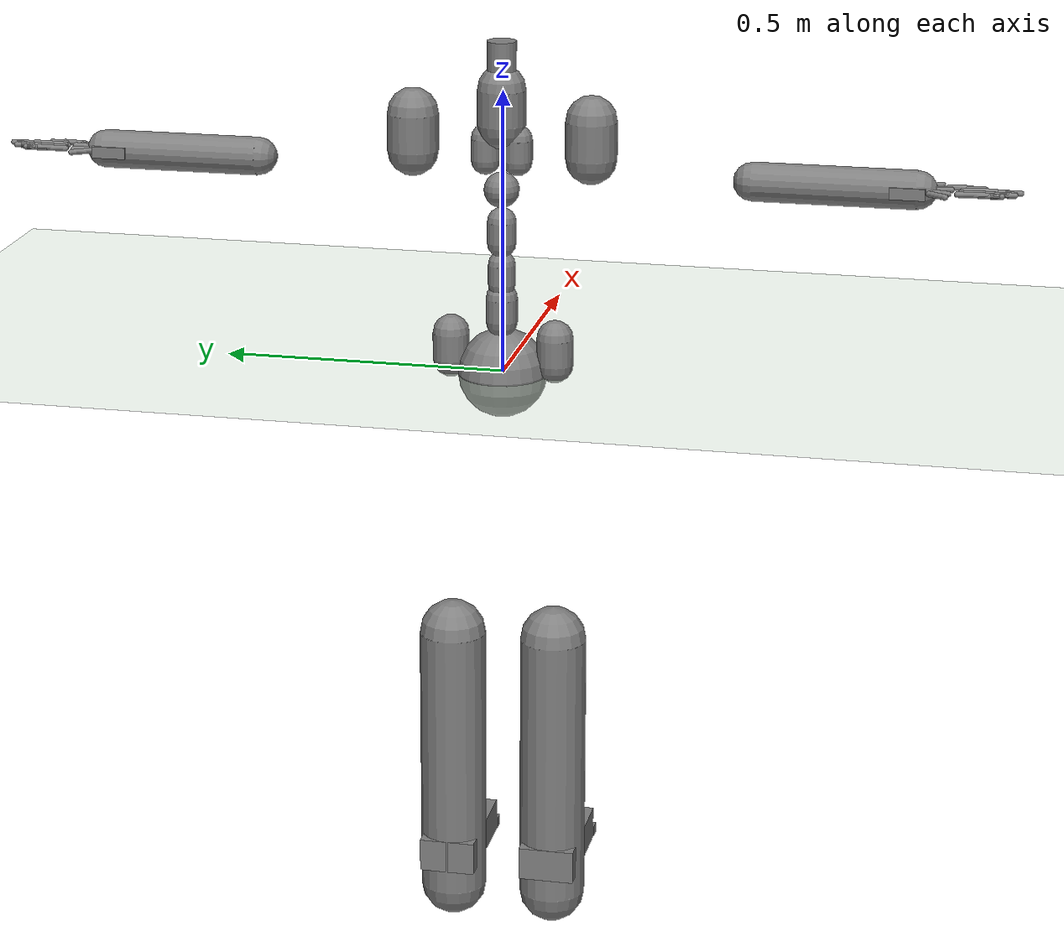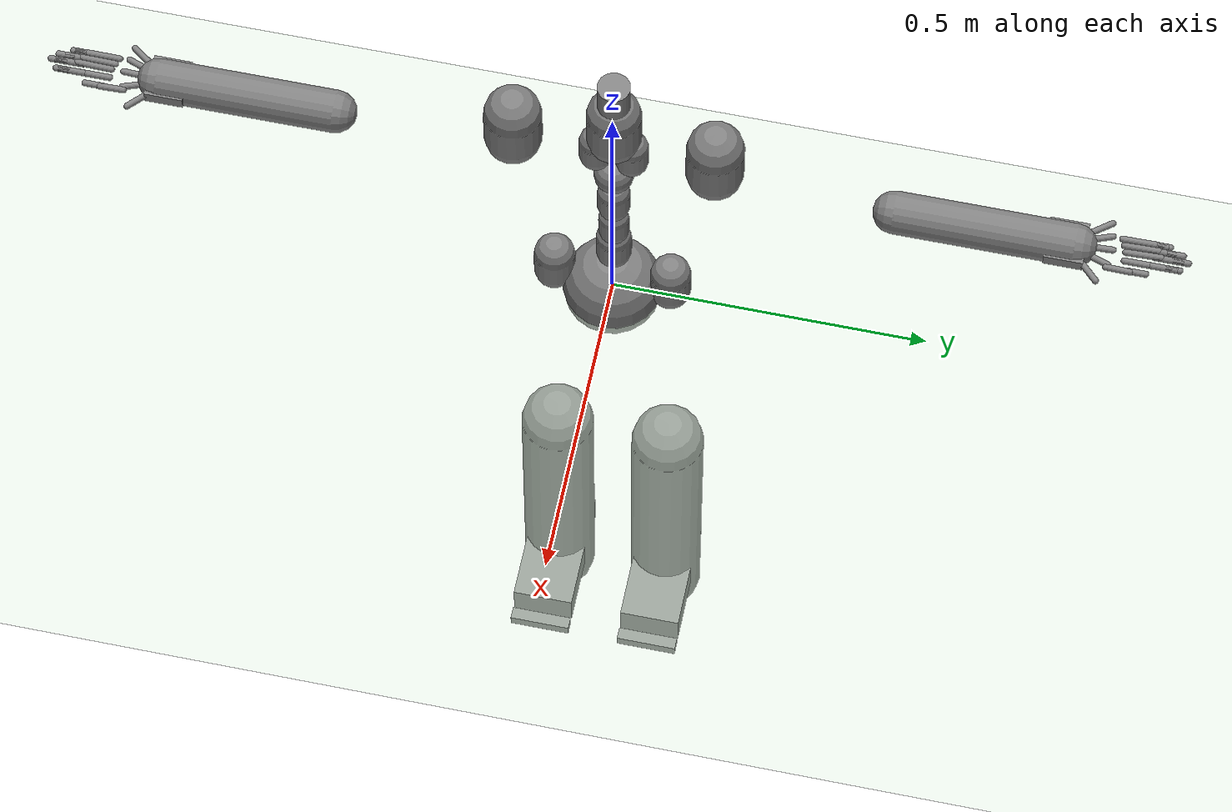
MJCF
<?xml version="1.0" ?>
<mujoco model="humanoid">
  <compiler coordinate="local"/>
  <statistic extent="2" center="0 0 1"/>
  <option timestep="0.00555"/>
  <default>
    <motor ctrlrange="-1 1" ctrllimited="true"/>
    <geom type="capsule" condim="1" friction="1.0 0.05 0.05" solimp=".9 .99 .003" solref=".015 1"/>
    <joint type="hinge" damping="0.1" stiffness="5" armature=".007" limited="true" solimplimit="0 .99 .01"/>
    <site size=".04" group="3"/>
  </default>
  <asset>
    <texture type="skybox" builtin="gradient" rgb1=".4 .5 .6" rgb2="0 0 0" width="100" height="100"/>
    <texture builtin="flat" height="1278" mark="cross" markrgb="1 1 1" name="texgeom" random="0.01" rgb1="0.8 0.6 0.4" rgb2="0.8 0.6 0.4" type="cube" width="127"/>
    <texture builtin="checker" height="100" name="texplane" rgb1="0 0 0" rgb2="0.8 0.8 0.8" type="2d" width="100"/>
    <material name="MatPlane" reflectance="0.5" shininess="1" specular="1" texrepeat="60 60" texture="texplane"/>
    <material name="geom" texture="texgeom" texuniform="true"/>
  </asset>
  <worldbody>
    <light cutoff="100" diffuse="1 1 1" dir="-0 0 -1.3" directional="true" exponent="1" pos="0 0 1.3" specular=".1 .1 .1"/>
    <geom conaffinity="1" condim="3" name="floor" pos="0 0 0" rgba="0.8 0.9 0.8 1" size="100 100 .2" type="plane" material="MatPlane"/>
    <body name="pHipOrigin" pos="0 0 0">
      <freejoint name="pHipOrigin"/>
      <geom type="sphere" contype="1" conaffinity="1" density="4629.6296296296305" size="0.07841" pos="0.0000 0.0000 -0.0000"/>
      <body name="jL5S1" pos="-0.00883614 0 0.07952507">
        <geom type="capsule" contype="1" conaffinity="1" density="1000" fromto="0 0 0.01600 0 0 0.05601" size="0.02801"/>
        <joint name="jL5S1_x" type="hinge" pos="0 0 0" axis="1 0 0" stiffness="500" damping="500" armature="0.02" range="-180.0000 180.0000"/>
        <joint name="jL5S1_y" type="hinge" pos="0 0 0" axis="0 1 0" stiffness="500" damping="500" armature="0.02" range="-180.0000 180.0000"/>
        <joint name="jL5S1_z" type="hinge" pos="0 0 0" axis="0 0 1" stiffness="500" damping="500" armature="0.02" range="-180.0000 180.0000"/>
        <body name="jL4L3" pos="0 0 0.06854896">
          <geom type="capsule" contype="1" conaffinity="1" density="1000" fromto="0 0 0.01371 0 0 0.04798" size="0.02399"/>
          <joint name="jL4L3_x" type="hinge" pos="0 0 0" axis="1 0 0" stiffness="500" damping="500" armature="0.02" range="-180.0000 180.0000"/>
          <joint name="jL4L3_y" type="hinge" pos="0 0 0" axis="0 1 0" stiffness="500" damping="500" armature="0.02" range="-180.0000 180.0000"/>
          <joint name="jL4L3_z" type="hinge" pos="0 0 0" axis="0 0 1" stiffness="500" damping="500" armature="0.02" range="-180.0000 180.0000"/>
          <body name="jL1T12" pos="-0.00056384 0 0.07308333">
            <geom type="capsule" contype="1" conaffinity="1" density="1000" fromto="0 0 0.01462 0 0 0.05116" size="0.02558"/>
            <joint name="jL1T12_x" type="hinge" pos="0 0 0" axis="1 0 0" stiffness="500" damping="500" armature="0.02" range="-180.0000 180.0000"/>
            <joint name="jL1T12_y" type="hinge" pos="0 0 0" axis="0 1 0" stiffness="500" damping="500" armature="0.02" range="-180.0000 180.0000"/>
            <joint name="jL1T12_z" type="hinge" pos="0 0 0" axis="0 0 1" stiffness="500" damping="500" armature="0.02" range="-180.0000 180.0000"/>
            <body name="jT9T8" pos="-0.00059683 0 0.07720903">
              <geom type="sphere" contype="1" conaffinity="1" density="1000" size="0.03088" pos="0.000 0.0000 0.030885"/>
              <joint name="jT9T8_x" type="hinge" pos="0 0 0" axis="1 0 0" stiffness="500" damping="500" armature="0.02" range="-180.0000 180.0000"/>
              <joint name="jT9T8_y" type="hinge" pos="0 0 0" axis="0 1 0" stiffness="500" damping="500" armature="0.02" range="-180.0000 180.0000"/>
              <joint name="jT9T8_z" type="hinge" pos="0 0 0" axis="0 0 1" stiffness="500" damping="500" armature="0.02" range="-180.0000 180.0000"/>
              <body name="jT1C7" pos="0 0 0.12055299">
                <geom type="capsule" contype="1" conaffinity="1" density="1000" fromto="0 0 0.02411 0 0 0.08439" size="0.04219"/>
                <joint name="jT1C7_x" type="hinge" pos="0 0 0" axis="1 0 0" stiffness="500" damping="500" armature="0.02" range="-180.0000 180.0000"/>
                <joint name="jT1C7_y" type="hinge" pos="0 0 0" axis="0 1 0" stiffness="500" damping="500" armature="0.02" range="-180.0000 180.0000"/>
                <joint name="jT1C7_z" type="hinge" pos="0 0 0" axis="0 0 1" stiffness="500" damping="500" armature="0.02" range="-180.0000 180.0000"/>
                <body name="jC1Head" pos="0.00098894 0 0.08382499">
                  <geom type="cylinder" contype="1" conaffinity="1" density="1000" fromto="0 0 0 0 0 0.08383" size="0.02515"/>
                  <joint name="jC1Head_x" type="hinge" pos="0 0 0" axis="1 0 0" stiffness="500" damping="500" armature="0.02" range="-180.0000 180.0000"/>
                  <joint name="jC1Head_y" type="hinge" pos="0 0 0" axis="0 1 0" stiffness="500" damping="500" armature="0.02" range="-180.0000 180.0000"/>
                  <joint name="jC1Head_z" type="hinge" pos="0 0 0" axis="0 0 1" stiffness="500" damping="500" armature="0.02" range="-180.0000 180.0000"/>
                </body>
              </body>
              <body name="jRightT4Shoulder" pos="0 -0.02789141 0.06800539">
                <geom type="capsule" contype="1" conaffinity="1" density="1000" fromto="0 0 0.01470 0 0 0.05145" size="0.02573"/>
                <joint name="jRightT4Shoulder_x" type="hinge" pos="0 0 0" axis="1 0 0" stiffness="500" damping="500" armature="0.02" range="-180.0000 180.0000"/>
                <joint name="jRightT4Shoulder_y" type="hinge" pos="0 0 0" axis="0 1 0" stiffness="500" damping="500" armature="0.02" range="-180.0000 180.0000"/>
                <joint name="jRightT4Shoulder_z" type="hinge" pos="0 0 0" axis="0 0 1" stiffness="500" damping="500" armature="0.02" range="-180.0000 180.0000"/>
                <body name="jRightShoulder" pos="0 -0.12751989 0">
                  <geom type="capsule" contype="1" conaffinity="1" density="1000" fromto="0 0 0.02550 0 0 0.08926" size="0.04463"/>
                  <joint name="jRightShoulder_x" type="hinge" pos="0 0 0" axis="1 0 0" stiffness="500" damping="500" armature="0.02" range="-180.0000 180.0000"/>
                  <joint name="jRightShoulder_y" type="hinge" pos="0 0 0" axis="0 1 0" stiffness="500" damping="500" armature="0.02" range="-180.0000 180.0000"/>
                  <joint name="jRightShoulder_z" type="hinge" pos="0 0 0" axis="0 0 1" stiffness="500" damping="500" armature="0.02" range="-180.0000 180.0000"/>
                  <body name="jRightElbow" pos="0 -0.27647701 0">
                    <geom type="capsule" contype="1" conaffinity="1" density="1000" fromto="0 0 0 0.00000000 -0.27647701 0.00000000" size="0.03318"/>
                    <joint name="jRightElbow_x" type="hinge" pos="0 0 0" axis="1 0 0" stiffness="500" damping="500" armature="0.02" range="-180.0000 180.0000"/>
                    <joint name="jRightElbow_y" type="hinge" pos="0 0 0" axis="0 1 0" stiffness="500" damping="500" armature="0.02" range="-180.0000 180.0000"/>
                    <joint name="jRightElbow_z" type="hinge" pos="0 0 0" axis="0 0 1" stiffness="500" damping="500" armature="0.02" range="-180.0000 180.0000"/>
                    <body name="jRightWrist" pos="0.00010528 -0.26157853 0">
                      <geom density="1000" type="box" pos="0 0 0" size="0.035 0.03 0.01" quat="1.0000 0.0000 0.0000 0.0000"/>
                      <joint name="jRightWrist_x" type="hinge" pos="0 0 0" axis="1 0 0" stiffness="500" damping="500" armature="0.02" range="-180.0000 180.0000"/>
                      <joint name="jRightWrist_y" type="hinge" pos="0 0 0" axis="0 1 0" stiffness="500" damping="500" armature="0.02" range="-180.0000 180.0000"/>
                      <joint name="jRightWrist_z" type="hinge" pos="0 0 0" axis="0 0 1" stiffness="500" damping="500" armature="0.02" range="-180.0000 180.0000"/>
                      <body name="jRightFirstCMC" pos="0.02715768 -0.02603216 -0.00122987">
                        <geom type="capsule" contype="1" conaffinity="1" density="1000" fromto="0 0 0 0.02715768 -0.02603216 -0.00122987" size="0.005"/>
                        <joint name="jRightFirstCMC_x" type="hinge" pos="0 0 0" axis="1 0 0" stiffness="500" damping="500" armature="0.02" range="-180.0000 180.0000"/>
                        <joint name="jRightFirstCMC_y" type="hinge" pos="0 0 0" axis="0 1 0" stiffness="500" damping="500" armature="0.02" range="-180.0000 180.0000"/>
                        <joint name="jRightFirstCMC_z" type="hinge" pos="0 0 0" axis="0 0 1" stiffness="500" damping="500" armature="0.02" range="-180.0000 180.0000"/>
                        <body name="jRightFirstMCP" pos="0.00133478 -0.03766648 0.00079589">
                          <geom type="capsule" contype="1" conaffinity="1" density="1000" fromto="0 0 0 0.00133478 -0.03766648 0.00079589" size="0.005"/>
                          <joint name="jRightFirstMCP_x" type="hinge" pos="0 0 0" axis="1 0 0" stiffness="500" damping="500" armature="0.02" range="-180.0000 180.0000"/>
                          <joint name="jRightFirstMCP_y" type="hinge" pos="0 0 0" axis="0 1 0" stiffness="500" damping="500" armature="0.02" range="-180.0000 180.0000"/>
                          <joint name="jRightFirstMCP_z" type="hinge" pos="0 0 0" axis="0 0 1" stiffness="500" damping="500" armature="0.02" range="-180.0000 180.0000"/>
                          <body name="jRightIP" pos="0 -0.03042756 0">
                            <geom type="capsule" contype="1" conaffinity="1" density="1000" fromto="0 0 0 0.00000000 -0.03042756 0.00000000" size="0.005"/>
                            <joint name="jRightIP_x" type="hinge" pos="0 0 0" axis="1 0 0" stiffness="500" damping="500" armature="0.02" range="-180.0000 180.0000"/>
                            <joint name="jRightIP_y" type="hinge" pos="0 0 0" axis="0 1 0" stiffness="500" damping="500" armature="0.02" range="-180.0000 180.0000"/>
                            <joint name="jRightIP_z" type="hinge" pos="0 0 0" axis="0 0 1" stiffness="500" damping="500" armature="0.02" range="-180.0000 180.0000"/>
                          </body>
                        </body>
                      </body>
                      <body name="jRightSecondCMC" pos="0.01153263 -0.03369471 -0.00058772">
                        <geom type="capsule" contype="1" conaffinity="1" density="1000" fromto="0 0 0 0.01153263 -0.03369471 -0.00058772" size="0.005"/>
                        <joint name="jRightSecondCMC_x" type="hinge" pos="0 0 0" axis="1 0 0" stiffness="500" damping="500" armature="0.02" range="-180.0000 180.0000"/>
                        <joint name="jRightSecondCMC_y" type="hinge" pos="0 0 0" axis="0 1 0" stiffness="500" damping="500" armature="0.02" range="-180.0000 180.0000"/>
                        <joint name="jRightSecondCMC_z" type="hinge" pos="0 0 0" axis="0 0 1" stiffness="500" damping="500" armature="0.02" range="-180.0000 180.0000"/>
                        <body name="jRightSecondMCP" pos="-0.00035126 -0.05602282 -0.00058114">
                          <geom type="capsule" contype="1" conaffinity="1" density="1000" fromto="0 0 0 -0.00035126 -0.05602282 -0.00058114" size="0.005"/>
                          <joint name="jRightSecondMCP_x" type="hinge" pos="0 0 0" axis="1 0 0" stiffness="500" damping="500" armature="0.02" range="-180.0000 180.0000"/>
                          <joint name="jRightSecondMCP_y" type="hinge" pos="0 0 0" axis="0 1 0" stiffness="500" damping="500" armature="0.02" range="-180.0000 180.0000"/>
                          <joint name="jRightSecondMCP_z" type="hinge" pos="0 0 0" axis="0 0 1" stiffness="500" damping="500" armature="0.02" range="-180.0000 180.0000"/>
                          <body name="jRightSecondPIP" pos="0 -0.04053439 0">
                            <geom type="capsule" contype="1" conaffinity="1" density="1000" fromto="0 0 0 0.00000000 -0.04053439 0.00000000" size="0.005"/>
                            <joint name="jRightSecondPIP_x" type="hinge" pos="0 0 0" axis="1 0 0" stiffness="500" damping="500" armature="0.02" range="-180.0000 180.0000"/>
                            <joint name="jRightSecondPIP_y" type="hinge" pos="0 0 0" axis="0 1 0" stiffness="500" damping="500" armature="0.02" range="-180.0000 180.0000"/>
                            <joint name="jRightSecondPIP_z" type="hinge" pos="0 0 0" axis="0 0 1" stiffness="500" damping="500" armature="0.02" range="-180.0000 180.0000"/>
                            <body name="jRightSecondDIP" pos="0 -0.02212784 0">
                              <geom type="capsule" contype="1" conaffinity="1" density="1000" fromto="0 0 0 0.00000000 -0.02212784 0.00000000" size="0.005"/>
                              <joint name="jRightSecondDIP_x" type="hinge" pos="0 0 0" axis="1 0 0" stiffness="500" damping="500" armature="0.02" range="-180.0000 180.0000"/>
                              <joint name="jRightSecondDIP_y" type="hinge" pos="0 0 0" axis="0 1 0" stiffness="500" damping="500" armature="0.02" range="-180.0000 180.0000"/>
                              <joint name="jRightSecondDIP_z" type="hinge" pos="0 0 0" axis="0 0 1" stiffness="500" damping="500" armature="0.02" range="-180.0000 180.0000"/>
                            </body>
                          </body>
                        </body>
                      </body>
                      <body name="jRightThirdCMC" pos="-0.00065376 -0.03535376 0.00148633">
                        <geom type="capsule" contype="1" conaffinity="1" density="1000" fromto="0 0 0 -0.00065376 -0.03535376 0.00148633" size="0.005"/>
                        <joint name="jRightThirdCMC_x" type="hinge" pos="0 0 0" axis="1 0 0" stiffness="500" damping="500" armature="0.02" range="-180.0000 180.0000"/>
                        <joint name="jRightThirdCMC_y" type="hinge" pos="0 0 0" axis="0 1 0" stiffness="500" damping="500" armature="0.02" range="-180.0000 180.0000"/>
                        <joint name="jRightThirdCMC_z" type="hinge" pos="0 0 0" axis="0 0 1" stiffness="500" damping="500" armature="0.02" range="-180.0000 180.0000"/>
                        <body name="jRightThirdMCP" pos="-0.00065576 -0.05432976 0.00147810">
                          <geom type="capsule" contype="1" conaffinity="1" density="1000" fromto="0 0 0 -0.00065576 -0.05432976 0.00147810" size="0.005"/>
                          <joint name="jRightThirdMCP_x" type="hinge" pos="0 0 0" axis="1 0 0" stiffness="500" damping="500" armature="0.02" range="-180.0000 180.0000"/>
                          <joint name="jRightThirdMCP_y" type="hinge" pos="0 0 0" axis="0 1 0" stiffness="500" damping="500" armature="0.02" range="-180.0000 180.0000"/>
                          <joint name="jRightThirdMCP_z" type="hinge" pos="0 0 0" axis="0 0 1" stiffness="500" damping="500" armature="0.02" range="-180.0000 180.0000"/>
                          <body name="jRightThirdPIP" pos="0 -0.04418756 0">
                            <geom type="capsule" contype="1" conaffinity="1" density="1000" fromto="0 0 0 0.00000000 -0.04418756 0.00000000" size="0.005"/>
                            <joint name="jRightThirdPIP_x" type="hinge" pos="0 0 0" axis="1 0 0" stiffness="500" damping="500" armature="0.02" range="-180.0000 180.0000"/>
                            <joint name="jRightThirdPIP_y" type="hinge" pos="0 0 0" axis="0 1 0" stiffness="500" damping="500" armature="0.02" range="-180.0000 180.0000"/>
                            <joint name="jRightThirdPIP_z" type="hinge" pos="0 0 0" axis="0 0 1" stiffness="500" damping="500" armature="0.02" range="-180.0000 180.0000"/>
                            <body name="jRightThirdDIP" pos="0 -0.02562359 0">
                              <geom type="capsule" contype="1" conaffinity="1" density="1000" fromto="0 0 0 0.00000000 -0.02562359 0.00000000" size="0.005"/>
                              <joint name="jRightThirdDIP_x" type="hinge" pos="0 0 0" axis="1 0 0" stiffness="500" damping="500" armature="0.02" range="-180.0000 180.0000"/>
                              <joint name="jRightThirdDIP_y" type="hinge" pos="0 0 0" axis="0 1 0" stiffness="500" damping="500" armature="0.02" range="-180.0000 180.0000"/>
                              <joint name="jRightThirdDIP_z" type="hinge" pos="0 0 0" axis="0 0 1" stiffness="500" damping="500" armature="0.02" range="-180.0000 180.0000"/>
                            </body>
                          </body>
                        </body>
                      </body>
                      <body name="jRightFourthCMC" pos="-0.01205511 -0.03357548 0.00079031">
                        <geom type="capsule" contype="1" conaffinity="1" density="1000" fromto="0 0 0 -0.01205511 -0.03357548 0.00079031" size="0.005"/>
                        <joint name="jRightFourthCMC_x" type="hinge" pos="0 0 0" axis="1 0 0" stiffness="500" damping="500" armature="0.02" range="-180.0000 180.0000"/>
                        <joint name="jRightFourthCMC_y" type="hinge" pos="0 0 0" axis="0 1 0" stiffness="500" damping="500" armature="0.02" range="-180.0000 180.0000"/>
                        <joint name="jRightFourthCMC_z" type="hinge" pos="0 0 0" axis="0 0 1" stiffness="500" damping="500" armature="0.02" range="-180.0000 180.0000"/>
                        <body name="jRightFourthMCP" pos="-0.00038499 -0.05276725 0.00082902">
                          <geom type="capsule" contype="1" conaffinity="1" density="1000" fromto="0 0 0 -0.00038499 -0.05276725 0.00082902" size="0.005"/>
                          <joint name="jRightFourthMCP_x" type="hinge" pos="0 0 0" axis="1 0 0" stiffness="500" damping="500" armature="0.02" range="-180.0000 180.0000"/>
                          <joint name="jRightFourthMCP_y" type="hinge" pos="0 0 0" axis="0 1 0" stiffness="500" damping="500" armature="0.02" range="-180.0000 180.0000"/>
                          <joint name="jRightFourthMCP_z" type="hinge" pos="0 0 0" axis="0 0 1" stiffness="500" damping="500" armature="0.02" range="-180.0000 180.0000"/>
                          <body name="jRightFourthPIP" pos="0 -0.03969449 0">
                            <geom type="capsule" contype="1" conaffinity="1" density="1000" fromto="0 0 0 0.00000000 -0.03969449 0.00000000" size="0.005"/>
                            <joint name="jRightFourthPIP_x" type="hinge" pos="0 0 0" axis="1 0 0" stiffness="500" damping="500" armature="0.02" range="-180.0000 180.0000"/>
                            <joint name="jRightFourthPIP_y" type="hinge" pos="0 0 0" axis="0 1 0" stiffness="500" damping="500" armature="0.02" range="-180.0000 180.0000"/>
                            <joint name="jRightFourthPIP_z" type="hinge" pos="0 0 0" axis="0 0 1" stiffness="500" damping="500" armature="0.02" range="-180.0000 180.0000"/>
                            <body name="jRightFourthDIP" pos="0 -0.02489287 0">
                              <geom type="capsule" contype="1" conaffinity="1" density="1000" fromto="0 0 0 0.00000000 -0.02489287 0.00000000" size="0.005"/>
                              <joint name="jRightFourthDIP_x" type="hinge" pos="0 0 0" axis="1 0 0" stiffness="500" damping="500" armature="0.02" range="-180.0000 180.0000"/>
                              <joint name="jRightFourthDIP_y" type="hinge" pos="0 0 0" axis="0 1 0" stiffness="500" damping="500" armature="0.02" range="-180.0000 180.0000"/>
                              <joint name="jRightFourthDIP_z" type="hinge" pos="0 0 0" axis="0 0 1" stiffness="500" damping="500" armature="0.02" range="-180.0000 180.0000"/>
                            </body>
                          </body>
                        </body>
                      </body>
                      <body name="jRightFifthCMC" pos="-0.02292596 -0.03194471 0.00063017">
                        <geom type="capsule" contype="1" conaffinity="1" density="1000" fromto="0 0 0 -0.02292596 -0.03194471 0.00063017" size="0.005"/>
                        <joint name="jRightFifthCMC_x" type="hinge" pos="0 0 0" axis="1 0 0" stiffness="500" damping="500" armature="0.02" range="-180.0000 180.0000"/>
                        <joint name="jRightFifthCMC_y" type="hinge" pos="0 0 0" axis="0 1 0" stiffness="500" damping="500" armature="0.02" range="-180.0000 180.0000"/>
                        <joint name="jRightFifthCMC_z" type="hinge" pos="0 0 0" axis="0 0 1" stiffness="500" damping="500" armature="0.02" range="-180.0000 180.0000"/>
                        <body name="jRightFifthMCP" pos="-0.00000740 -0.05009052 0.00068931">
                          <geom type="capsule" contype="1" conaffinity="1" density="1000" fromto="0 0 0 -0.00000740 -0.05009052 0.00068931" size="0.005"/>
                          <joint name="jRightFifthMCP_x" type="hinge" pos="0 0 0" axis="1 0 0" stiffness="500" damping="500" armature="0.02" range="-180.0000 180.0000"/>
                          <joint name="jRightFifthMCP_y" type="hinge" pos="0 0 0" axis="0 1 0" stiffness="500" damping="500" armature="0.02" range="-180.0000 180.0000"/>
                          <joint name="jRightFifthMCP_z" type="hinge" pos="0 0 0" axis="0 0 1" stiffness="500" damping="500" armature="0.02" range="-180.0000 180.0000"/>
                          <body name="jRightFifthPIP" pos="0 -0.03507616 0">
                            <geom type="capsule" contype="1" conaffinity="1" density="1000" fromto="0 0 0 0.00000000 -0.03507616 0.00000000" size="0.005"/>
                            <joint name="jRightFifthPIP_x" type="hinge" pos="0 0 0" axis="1 0 0" stiffness="500" damping="500" armature="0.02" range="-180.0000 180.0000"/>
                            <joint name="jRightFifthPIP_y" type="hinge" pos="0 0 0" axis="0 1 0" stiffness="500" damping="500" armature="0.02" range="-180.0000 180.0000"/>
                            <joint name="jRightFifthPIP_z" type="hinge" pos="0 0 0" axis="0 0 1" stiffness="500" damping="500" armature="0.02" range="-180.0000 180.0000"/>
                            <body name="jRightFifthDIP" pos="0 -0.01909505 0">
                              <geom type="capsule" contype="1" conaffinity="1" density="1000" fromto="0 0 0 0.00000000 -0.01909505 0.00000000" size="0.005"/>
                              <joint name="jRightFifthDIP_x" type="hinge" pos="0 0 0" axis="1 0 0" stiffness="500" damping="500" armature="0.02" range="-180.0000 180.0000"/>
                              <joint name="jRightFifthDIP_y" type="hinge" pos="0 0 0" axis="0 1 0" stiffness="500" damping="500" armature="0.02" range="-180.0000 180.0000"/>
                              <joint name="jRightFifthDIP_z" type="hinge" pos="0 0 0" axis="0 0 1" stiffness="500" damping="500" armature="0.02" range="-180.0000 180.0000"/>
                            </body>
                          </body>
                        </body>
                      </body>
                    </body>
                  </body>
                </body>
              </body>
              <body name="jLeftT4Shoulder" pos="0 0.02781060 0.06780835">
                <geom type="capsule" contype="1" conaffinity="1" density="1000" fromto="0 0 0.01466 0 0 0.05130" size="0.02565"/>
                <joint name="jLeftT4Shoulder_x" type="hinge" pos="0 0 0" axis="1 0 0" stiffness="500" damping="500" armature="0.02" range="-180.0000 180.0000"/>
                <joint name="jLeftT4Shoulder_y" type="hinge" pos="0 0 0" axis="0 1 0" stiffness="500" damping="500" armature="0.02" range="-180.0000 180.0000"/>
                <joint name="jLeftT4Shoulder_z" type="hinge" pos="0 0 0" axis="0 0 1" stiffness="500" damping="500" armature="0.02" range="-180.0000 180.0000"/>
                <body name="jLeftShoulder" pos="0 0.12753560 0">
                  <geom type="capsule" contype="1" conaffinity="1" density="1000" fromto="0 0 0.02551 0 0 0.08927" size="0.04464"/>
                  <joint name="jLeftShoulder_x" type="hinge" pos="0 0 0" axis="1 0 0" stiffness="500" damping="500" armature="0.02" range="-180.0000 180.0000"/>
                  <joint name="jLeftShoulder_y" type="hinge" pos="0 0 0" axis="0 1 0" stiffness="500" damping="500" armature="0.02" range="-180.0000 180.0000"/>
                  <joint name="jLeftShoulder_z" type="hinge" pos="0 0 0" axis="0 0 1" stiffness="500" damping="500" armature="0.02" range="-180.0000 180.0000"/>
                  <body name="jLeftElbow" pos="0 0.27616096 0">
                    <geom type="capsule" contype="1" conaffinity="1" density="1000" fromto="0 0 0 0.00000000 0.27616096 0.00000000" size="0.03314"/>
                    <joint name="jLeftElbow_x" type="hinge" pos="0 0 0" axis="1 0 0" stiffness="500" damping="500" armature="0.02" range="-180.0000 180.0000"/>
                    <joint name="jLeftElbow_y" type="hinge" pos="0 0 0" axis="0 1 0" stiffness="500" damping="500" armature="0.02" range="-180.0000 180.0000"/>
                    <joint name="jLeftElbow_z" type="hinge" pos="0 0 0" axis="0 0 1" stiffness="500" damping="500" armature="0.02" range="-180.0000 180.0000"/>
                    <body name="jLeftWrist" pos="0.00010555 0.26225198 0">
                      <geom density="1000" type="box" pos="0 0 0" size="0.035 0.03 0.01" quat="1.0000 0.0000 0.0000 0.0000"/>
                      <joint name="jLeftWrist_x" type="hinge" pos="0 0 0" axis="1 0 0" stiffness="500" damping="500" armature="0.02" range="-180.0000 180.0000"/>
                      <joint name="jLeftWrist_y" type="hinge" pos="0 0 0" axis="0 1 0" stiffness="500" damping="500" armature="0.02" range="-180.0000 180.0000"/>
                      <joint name="jLeftWrist_z" type="hinge" pos="0 0 0" axis="0 0 1" stiffness="500" damping="500" armature="0.02" range="-180.0000 180.0000"/>
                      <body name="jLeftFirstCMC" pos="0.02658097 0.02664375 -0.00118968">
                        <geom type="capsule" contype="1" conaffinity="1" density="1000" fromto="0 0 0 0.02658097 0.02664375 -0.00118968" size="0.005"/>
                        <joint name="jLeftFirstCMC_x" type="hinge" pos="0 0 0" axis="1 0 0" stiffness="500" damping="500" armature="0.02" range="-180.0000 180.0000"/>
                        <joint name="jLeftFirstCMC_y" type="hinge" pos="0 0 0" axis="0 1 0" stiffness="500" damping="500" armature="0.02" range="-180.0000 180.0000"/>
                        <joint name="jLeftFirstCMC_z" type="hinge" pos="0 0 0" axis="0 0 1" stiffness="500" damping="500" armature="0.02" range="-180.0000 180.0000"/>
                        <body name="jLeftFirstMCP" pos="0.00132192 0.03766563 0.00077563">
                          <geom type="capsule" contype="1" conaffinity="1" density="1000" fromto="0 0 0 0.00132192 0.03766563 0.00077563" size="0.005"/>
                          <joint name="jLeftFirstMCP_x" type="hinge" pos="0 0 0" axis="1 0 0" stiffness="500" damping="500" armature="0.02" range="-180.0000 180.0000"/>
                          <joint name="jLeftFirstMCP_y" type="hinge" pos="0 0 0" axis="0 1 0" stiffness="500" damping="500" armature="0.02" range="-180.0000 180.0000"/>
                          <joint name="jLeftFirstMCP_z" type="hinge" pos="0 0 0" axis="0 0 1" stiffness="500" damping="500" armature="0.02" range="-180.0000 180.0000"/>
                          <body name="jLeftIP" pos="0 0.03042756 0">
                            <geom type="capsule" contype="1" conaffinity="1" density="1000" fromto="0 0 0 0.00000000 0.03042756 0.00000000" size="0.005"/>
                            <joint name="jLeftIP_x" type="hinge" pos="0 0 0" axis="1 0 0" stiffness="500" damping="500" armature="0.02" range="-180.0000 180.0000"/>
                            <joint name="jLeftIP_y" type="hinge" pos="0 0 0" axis="0 1 0" stiffness="500" damping="500" armature="0.02" range="-180.0000 180.0000"/>
                            <joint name="jLeftIP_z" type="hinge" pos="0 0 0" axis="0 0 1" stiffness="500" damping="500" armature="0.02" range="-180.0000 180.0000"/>
                          </body>
                        </body>
                      </body>
                      <body name="jLeftSecondCMC" pos="0.01166547 0.03363271 -0.00059257">
                        <geom type="capsule" contype="1" conaffinity="1" density="1000" fromto="0 0 0 0.01166547 0.03363271 -0.00059257" size="0.005"/>
                        <joint name="jLeftSecondCMC_x" type="hinge" pos="0 0 0" axis="1 0 0" stiffness="500" damping="500" armature="0.02" range="-180.0000 180.0000"/>
                        <joint name="jLeftSecondCMC_y" type="hinge" pos="0 0 0" axis="0 1 0" stiffness="500" damping="500" armature="0.02" range="-180.0000 180.0000"/>
                        <joint name="jLeftSecondCMC_z" type="hinge" pos="0 0 0" axis="0 0 1" stiffness="500" damping="500" armature="0.02" range="-180.0000 180.0000"/>
                        <body name="jLeftSecondMCP" pos="-0.00030627 0.05602397 -0.00058832">
                          <geom type="capsule" contype="1" conaffinity="1" density="1000" fromto="0 0 0 -0.00030627 0.05602397 -0.00058832" size="0.005"/>
                          <joint name="jLeftSecondMCP_x" type="hinge" pos="0 0 0" axis="1 0 0" stiffness="500" damping="500" armature="0.02" range="-180.0000 180.0000"/>
                          <joint name="jLeftSecondMCP_y" type="hinge" pos="0 0 0" axis="0 1 0" stiffness="500" damping="500" armature="0.02" range="-180.0000 180.0000"/>
                          <joint name="jLeftSecondMCP_z" type="hinge" pos="0 0 0" axis="0 0 1" stiffness="500" damping="500" armature="0.02" range="-180.0000 180.0000"/>
                          <body name="jLeftSecondPIP" pos="0 0.04053439 0">
                            <geom type="capsule" contype="1" conaffinity="1" density="1000" fromto="0 0 0 0.00000000 0.04053439 0.00000000" size="0.005"/>
                            <joint name="jLeftSecondPIP_x" type="hinge" pos="0 0 0" axis="1 0 0" stiffness="500" damping="500" armature="0.02" range="-180.0000 180.0000"/>
                            <joint name="jLeftSecondPIP_y" type="hinge" pos="0 0 0" axis="0 1 0" stiffness="500" damping="500" armature="0.02" range="-180.0000 180.0000"/>
                            <joint name="jLeftSecondPIP_z" type="hinge" pos="0 0 0" axis="0 0 1" stiffness="500" damping="500" armature="0.02" range="-180.0000 180.0000"/>
                            <body name="jLeftSecondDIP" pos="0 0.02212784 0">
                              <geom type="capsule" contype="1" conaffinity="1" density="1000" fromto="0 0 0 0.00000000 0.02212784 0.00000000" size="0.005"/>
                              <joint name="jLeftSecondDIP_x" type="hinge" pos="0 0 0" axis="1 0 0" stiffness="500" damping="500" armature="0.02" range="-180.0000 180.0000"/>
                              <joint name="jLeftSecondDIP_y" type="hinge" pos="0 0 0" axis="0 1 0" stiffness="500" damping="500" armature="0.02" range="-180.0000 180.0000"/>
                              <joint name="jLeftSecondDIP_z" type="hinge" pos="0 0 0" axis="0 0 1" stiffness="500" damping="500" armature="0.02" range="-180.0000 180.0000"/>
                            </body>
                          </body>
                        </body>
                      </body>
                      <body name="jLeftThirdCMC" pos="-0.00065760 0.03535694 0.00143678">
                        <geom type="capsule" contype="1" conaffinity="1" density="1000" fromto="0 0 0 -0.00065760 0.03535694 0.00143678" size="0.005"/>
                        <joint name="jLeftThirdCMC_x" type="hinge" pos="0 0 0" axis="1 0 0" stiffness="500" damping="500" armature="0.02" range="-180.0000 180.0000"/>
                        <joint name="jLeftThirdCMC_y" type="hinge" pos="0 0 0" axis="0 1 0" stiffness="500" damping="500" armature="0.02" range="-180.0000 180.0000"/>
                        <joint name="jLeftThirdCMC_z" type="hinge" pos="0 0 0" axis="0 0 1" stiffness="500" damping="500" armature="0.02" range="-180.0000 180.0000"/>
                        <body name="jLeftThirdMCP" pos="-0.00066105 0.05433081 0.00144839">
                          <geom type="capsule" contype="1" conaffinity="1" density="1000" fromto="0 0 0 -0.00066105 0.05433081 0.00144839" size="0.005"/>
                          <joint name="jLeftThirdMCP_x" type="hinge" pos="0 0 0" axis="1 0 0" stiffness="500" damping="500" armature="0.02" range="-180.0000 180.0000"/>
                          <joint name="jLeftThirdMCP_y" type="hinge" pos="0 0 0" axis="0 1 0" stiffness="500" damping="500" armature="0.02" range="-180.0000 180.0000"/>
                          <joint name="jLeftThirdMCP_z" type="hinge" pos="0 0 0" axis="0 0 1" stiffness="500" damping="500" armature="0.02" range="-180.0000 180.0000"/>
                          <body name="jLeftThirdPIP" pos="0 0.04418756 0">
                            <geom type="capsule" contype="1" conaffinity="1" density="1000" fromto="0 0 0 0.00000000 0.04418756 0.00000000" size="0.005"/>
                            <joint name="jLeftThirdPIP_x" type="hinge" pos="0 0 0" axis="1 0 0" stiffness="500" damping="500" armature="0.02" range="-180.0000 180.0000"/>
                            <joint name="jLeftThirdPIP_y" type="hinge" pos="0 0 0" axis="0 1 0" stiffness="500" damping="500" armature="0.02" range="-180.0000 180.0000"/>
                            <joint name="jLeftThirdPIP_z" type="hinge" pos="0 0 0" axis="0 0 1" stiffness="500" damping="500" armature="0.02" range="-180.0000 180.0000"/>
                            <body name="jLeftThirdDIP" pos="0 0.02562359 0">
                              <geom type="capsule" contype="1" conaffinity="1" density="1000" fromto="0 0 0 0.00000000 0.02562359 0.00000000" size="0.005"/>
                              <joint name="jLeftThirdDIP_x" type="hinge" pos="0 0 0" axis="1 0 0" stiffness="500" damping="500" armature="0.02" range="-180.0000 180.0000"/>
                              <joint name="jLeftThirdDIP_y" type="hinge" pos="0 0 0" axis="0 1 0" stiffness="500" damping="500" armature="0.02" range="-180.0000 180.0000"/>
                              <joint name="jLeftThirdDIP_z" type="hinge" pos="0 0 0" axis="0 0 1" stiffness="500" damping="500" armature="0.02" range="-180.0000 180.0000"/>
                            </body>
                          </body>
                        </body>
                      </body>
                      <body name="jLeftFourthCMC" pos="-0.01249745 0.03340374 0.00084365">
                        <geom type="capsule" contype="1" conaffinity="1" density="1000" fromto="0 0 0 -0.01249745 0.03340374 0.00084365" size="0.005"/>
                        <joint name="jLeftFourthCMC_x" type="hinge" pos="0 0 0" axis="1 0 0" stiffness="500" damping="500" armature="0.02" range="-180.0000 180.0000"/>
                        <joint name="jLeftFourthCMC_y" type="hinge" pos="0 0 0" axis="0 1 0" stiffness="500" damping="500" armature="0.02" range="-180.0000 180.0000"/>
                        <joint name="jLeftFourthCMC_z" type="hinge" pos="0 0 0" axis="0 0 1" stiffness="500" damping="500" armature="0.02" range="-180.0000 180.0000"/>
                        <body name="jLeftFourthMCP" pos="-0.00041403 0.05276423 0.00087678">
                          <geom type="capsule" contype="1" conaffinity="1" density="1000" fromto="0 0 0 -0.00041403 0.05276423 0.00087678" size="0.005"/>
                          <joint name="jLeftFourthMCP_x" type="hinge" pos="0 0 0" axis="1 0 0" stiffness="500" damping="500" armature="0.02" range="-180.0000 180.0000"/>
                          <joint name="jLeftFourthMCP_y" type="hinge" pos="0 0 0" axis="0 1 0" stiffness="500" damping="500" armature="0.02" range="-180.0000 180.0000"/>
                          <joint name="jLeftFourthMCP_z" type="hinge" pos="0 0 0" axis="0 0 1" stiffness="500" damping="500" armature="0.02" range="-180.0000 180.0000"/>
                          <body name="jLeftFourthPIP" pos="0 0.03969449 0">
                            <geom type="capsule" contype="1" conaffinity="1" density="1000" fromto="0 0 0 0.00000000 0.03969449 0.00000000" size="0.005"/>
                            <joint name="jLeftFourthPIP_x" type="hinge" pos="0 0 0" axis="1 0 0" stiffness="500" damping="500" armature="0.02" range="-180.0000 180.0000"/>
                            <joint name="jLeftFourthPIP_y" type="hinge" pos="0 0 0" axis="0 1 0" stiffness="500" damping="500" armature="0.02" range="-180.0000 180.0000"/>
                            <joint name="jLeftFourthPIP_z" type="hinge" pos="0 0 0" axis="0 0 1" stiffness="500" damping="500" armature="0.02" range="-180.0000 180.0000"/>
                            <body name="jLeftFourthDIP" pos="0 0.02489287 0">
                              <geom type="capsule" contype="1" conaffinity="1" density="1000" fromto="0 0 0 0.00000000 0.02489287 0.00000000" size="0.005"/>
                              <joint name="jLeftFourthDIP_x" type="hinge" pos="0 0 0" axis="1 0 0" stiffness="500" damping="500" armature="0.02" range="-180.0000 180.0000"/>
                              <joint name="jLeftFourthDIP_y" type="hinge" pos="0 0 0" axis="0 1 0" stiffness="500" damping="500" armature="0.02" range="-180.0000 180.0000"/>
                              <joint name="jLeftFourthDIP_z" type="hinge" pos="0 0 0" axis="0 0 1" stiffness="500" damping="500" armature="0.02" range="-180.0000 180.0000"/>
                            </body>
                          </body>
                        </body>
                      </body>
                      <body name="jLeftFifthCMC" pos="-0.02362047 0.03143969 0.00064030">
                        <geom type="capsule" contype="1" conaffinity="1" density="1000" fromto="0 0 0 -0.02362047 0.03143969 0.00064030" size="0.005"/>
                        <joint name="jLeftFifthCMC_x" type="hinge" pos="0 0 0" axis="1 0 0" stiffness="500" damping="500" armature="0.02" range="-180.0000 180.0000"/>
                        <joint name="jLeftFifthCMC_y" type="hinge" pos="0 0 0" axis="0 1 0" stiffness="500" damping="500" armature="0.02" range="-180.0000 180.0000"/>
                        <joint name="jLeftFifthCMC_z" type="hinge" pos="0 0 0" axis="0 0 1" stiffness="500" damping="500" armature="0.02" range="-180.0000 180.0000"/>
                        <body name="jLeftFifthMCP" pos="-0.00001421 0.05008915 0.00072075">
                          <geom type="capsule" contype="1" conaffinity="1" density="1000" fromto="0 0 0 -0.00001421 0.05008915 0.00072075" size="0.005"/>
                          <joint name="jLeftFifthMCP_x" type="hinge" pos="0 0 0" axis="1 0 0" stiffness="500" damping="500" armature="0.02" range="-180.0000 180.0000"/>
                          <joint name="jLeftFifthMCP_y" type="hinge" pos="0 0 0" axis="0 1 0" stiffness="500" damping="500" armature="0.02" range="-180.0000 180.0000"/>
                          <joint name="jLeftFifthMCP_z" type="hinge" pos="0 0 0" axis="0 0 1" stiffness="500" damping="500" armature="0.02" range="-180.0000 180.0000"/>
                          <body name="jLeftFifthPIP" pos="0 0.03507616 0">
                            <geom type="capsule" contype="1" conaffinity="1" density="1000" fromto="0 0 0 0.00000000 0.03507616 0.00000000" size="0.005"/>
                            <joint name="jLeftFifthPIP_x" type="hinge" pos="0 0 0" axis="1 0 0" stiffness="500" damping="500" armature="0.02" range="-180.0000 180.0000"/>
                            <joint name="jLeftFifthPIP_y" type="hinge" pos="0 0 0" axis="0 1 0" stiffness="500" damping="500" armature="0.02" range="-180.0000 180.0000"/>
                            <joint name="jLeftFifthPIP_z" type="hinge" pos="0 0 0" axis="0 0 1" stiffness="500" damping="500" armature="0.02" range="-180.0000 180.0000"/>
                            <body name="jLeftFifthDIP" pos="0 0.01909505 0">
                              <geom type="capsule" contype="1" conaffinity="1" density="1000" fromto="0 0 0 0.00000000 0.01909505 0.00000000" size="0.005"/>
                              <joint name="jLeftFifthDIP_x" type="hinge" pos="0 0 0" axis="1 0 0" stiffness="500" damping="500" armature="0.02" range="-180.0000 180.0000"/>
                              <joint name="jLeftFifthDIP_y" type="hinge" pos="0 0 0" axis="0 1 0" stiffness="500" damping="500" armature="0.02" range="-180.0000 180.0000"/>
                              <joint name="jLeftFifthDIP_z" type="hinge" pos="0 0 0" axis="0 0 1" stiffness="500" damping="500" armature="0.02" range="-180.0000 180.0000"/>
                            </body>
                          </body>
                        </body>
                      </body>
                    </body>
                  </body>
                </body>
              </body>
            </body>
          </body>
        </body>
      </body>
      <body name="jRightHip" pos="-0.00015618 -0.09268363 0.00140598">
        <geom type="capsule" contype="1" conaffinity="1" density="1000" fromto="0 0 0.01854 0 0 0.06489" size="0.03244"/>
        <joint name="jRightHip_x" type="hinge" pos="0 0 0" axis="1 0 0" stiffness="500" damping="500" armature="0.02" range="-180.0000 180.0000"/>
        <joint name="jRightHip_y" type="hinge" pos="0 0 0" axis="0 1 0" stiffness="500" damping="500" armature="0.02" range="-180.0000 180.0000"/>
        <joint name="jRightHip_z" type="hinge" pos="0 0 0" axis="0 0 1" stiffness="500" damping="500" armature="0.02" range="-180.0000 180.0000"/>
        <body name="jRightKnee" pos="0.00005922 0 -0.49669978">
          <geom type="capsule" contype="1" conaffinity="1" density="1000" fromto="0 0 0 0.00005922 0.00000000 -0.49669978" size="0.05960"/>
          <joint name="jRightKnee_x" type="hinge" pos="0 0 0" axis="1 0 0" stiffness="500" damping="500" armature="0.02" range="-180.0000 180.0000"/>
          <joint name="jRightKnee_y" type="hinge" pos="0 0 0" axis="0 1 0" stiffness="500" damping="500" armature="0.02" range="-180.0000 180.0000"/>
          <joint name="jRightKnee_z" type="hinge" pos="0 0 0" axis="0 0 1" stiffness="500" damping="500" armature="0.02" range="-180.0000 180.0000"/>
          <body name="jRightAnkle" pos="0.00044394 0 -0.39316282">
            <geom density="1000" type="box" pos="0.04 0. -0.03" size="0.1 0.05 0.03" quat="1.0 0 0 0"/>
            <joint name="jRightAnkle_x" type="hinge" pos="0 0 0" axis="1 0 0" stiffness="500" damping="500" armature="0.02" range="-180.0000 180.0000"/>
            <joint name="jRightAnkle_y" type="hinge" pos="0 0 0" axis="0 1 0" stiffness="500" damping="500" armature="0.02" range="-180.0000 180.0000"/>
            <joint name="jRightAnkle_z" type="hinge" pos="0 0 0" axis="0 0 1" stiffness="500" damping="500" armature="0.02" range="-180.0000 180.0000"/>
            <body name="jRightBallFoot" pos="0.15818763 0 -0.07257032">
              <geom density="1000" type="box" pos="0 0 0.02" size="0.01 0.05 0.01" quat="1.0 0 0 0"/>
              <joint name="jRightBallFoot_x" type="hinge" pos="0 0 0" axis="1 0 0" stiffness="500" damping="500" armature="0.02" range="-180.0000 180.0000"/>
              <joint name="jRightBallFoot_y" type="hinge" pos="0 0 0" axis="0 1 0" stiffness="500" damping="500" armature="0.02" range="-180.0000 180.0000"/>
              <joint name="jRightBallFoot_z" type="hinge" pos="0 0 0" axis="0 0 1" stiffness="500" damping="500" armature="0.02" range="-180.0000 180.0000"/>
            </body>
          </body>
        </body>
      </body>
      <body name="jLeftHip" pos="-0.00015379 0.09245966 0.00138403">
        <geom type="capsule" contype="1" conaffinity="1" density="1000" fromto="0 0 0.01849 0 0 0.06473" size="0.03236"/>
        <joint name="jLeftHip_x" type="hinge" pos="0 0 0" axis="1 0 0" stiffness="500" damping="500" armature="0.02" range="-180.0000 180.0000"/>
        <joint name="jLeftHip_y" type="hinge" pos="0 0 0" axis="0 1 0" stiffness="500" damping="500" armature="0.02" range="-180.0000 180.0000"/>
        <joint name="jLeftHip_z" type="hinge" pos="0 0 0" axis="0 0 1" stiffness="500" damping="500" armature="0.02" range="-180.0000 180.0000"/>
        <body name="jLeftKnee" pos="0.00005941 0 -0.49830314">
          <geom type="capsule" contype="1" conaffinity="1" density="1000" fromto="0 0 0 0.00005941 0.00000000 -0.49830314" size="0.05980"/>
          <joint name="jLeftKnee_x" type="hinge" pos="0 0 0" axis="1 0 0" stiffness="500" damping="500" armature="0.02" range="-180.0000 180.0000"/>
          <joint name="jLeftKnee_y" type="hinge" pos="0 0 0" axis="0 1 0" stiffness="500" damping="500" armature="0.02" range="-180.0000 180.0000"/>
          <joint name="jLeftKnee_z" type="hinge" pos="0 0 0" axis="0 0 1" stiffness="500" damping="500" armature="0.02" range="-180.0000 180.0000"/>
          <body name="jLeftAnkle" pos="0.00044394 0 -0.39316285">
            <geom density="1000" type="box" pos="0.04 0. -0.03" size="0.1 0.05 0.03" quat="1.0 0 0 0"/>
            <joint name="jLeftAnkle_x" type="hinge" pos="0 0 0" axis="1 0 0" stiffness="500" damping="500" armature="0.02" range="-180.0000 180.0000"/>
            <joint name="jLeftAnkle_y" type="hinge" pos="0 0 0" axis="0 1 0" stiffness="500" damping="500" armature="0.02" range="-180.0000 180.0000"/>
            <joint name="jLeftAnkle_z" type="hinge" pos="0 0 0" axis="0 0 1" stiffness="500" damping="500" armature="0.02" range="-180.0000 180.0000"/>
            <body name="jLeftBallFoot" pos="0.15818765 0 -0.07257033">
              <geom density="1000" type="box" pos="0 0 0.02" size="0.01 0.05 0.01" quat="1.0 0 0 0"/>
              <joint name="jLeftBallFoot_x" type="hinge" pos="0 0 0" axis="1 0 0" stiffness="500" damping="500" armature="0.02" range="-180.0000 180.0000"/>
              <joint name="jLeftBallFoot_y" type="hinge" pos="0 0 0" axis="0 1 0" stiffness="500" damping="500" armature="0.02" range="-180.0000 180.0000"/>
              <joint name="jLeftBallFoot_z" type="hinge" pos="0 0 0" axis="0 0 1" stiffness="500" damping="500" armature="0.02" range="-180.0000 180.0000"/>
            </body>
          </body>
        </body>
      </body>
    </body>
  </worldbody>
  <actuator>
    <motor name="jL5S1_x" joint="jL5S1_x" gear="500"/>
    <motor name="jL5S1_y" joint="jL5S1_y" gear="500"/>
    <motor name="jL5S1_z" joint="jL5S1_z" gear="500"/>
    <motor name="jL4L3_x" joint="jL4L3_x" gear="500"/>
    <motor name="jL4L3_y" joint="jL4L3_y" gear="500"/>
    <motor name="jL4L3_z" joint="jL4L3_z" gear="500"/>
    <motor name="jL1T12_x" joint="jL1T12_x" gear="500"/>
    <motor name="jL1T12_y" joint="jL1T12_y" gear="500"/>
    <motor name="jL1T12_z" joint="jL1T12_z" gear="500"/>
    <motor name="jT9T8_x" joint="jT9T8_x" gear="500"/>
    <motor name="jT9T8_y" joint="jT9T8_y" gear="500"/>
    <motor name="jT9T8_z" joint="jT9T8_z" gear="500"/>
    <motor name="jT1C7_x" joint="jT1C7_x" gear="500"/>
    <motor name="jT1C7_y" joint="jT1C7_y" gear="500"/>
    <motor name="jT1C7_z" joint="jT1C7_z" gear="500"/>
    <motor name="jC1Head_x" joint="jC1Head_x" gear="500"/>
    <motor name="jC1Head_y" joint="jC1Head_y" gear="500"/>
    <motor name="jC1Head_z" joint="jC1Head_z" gear="500"/>
    <motor name="jRightT4Shoulder_x" joint="jRightT4Shoulder_x" gear="500"/>
    <motor name="jRightT4Shoulder_y" joint="jRightT4Shoulder_y" gear="500"/>
    <motor name="jRightT4Shoulder_z" joint="jRightT4Shoulder_z" gear="500"/>
    <motor name="jRightShoulder_x" joint="jRightShoulder_x" gear="500"/>
    <motor name="jRightShoulder_y" joint="jRightShoulder_y" gear="500"/>
    <motor name="jRightShoulder_z" joint="jRightShoulder_z" gear="500"/>
    <motor name="jRightElbow_x" joint="jRightElbow_x" gear="500"/>
    <motor name="jRightElbow_y" joint="jRightElbow_y" gear="500"/>
    <motor name="jRightElbow_z" joint="jRightElbow_z" gear="500"/>
    <motor name="jRightWrist_x" joint="jRightWrist_x" gear="500"/>
    <motor name="jRightWrist_y" joint="jRightWrist_y" gear="500"/>
    <motor name="jRightWrist_z" joint="jRightWrist_z" gear="500"/>
    <motor name="jLeftT4Shoulder_x" joint="jLeftT4Shoulder_x" gear="500"/>
    <motor name="jLeftT4Shoulder_y" joint="jLeftT4Shoulder_y" gear="500"/>
    <motor name="jLeftT4Shoulder_z" joint="jLeftT4Shoulder_z" gear="500"/>
    <motor name="jLeftShoulder_x" joint="jLeftShoulder_x" gear="500"/>
    <motor name="jLeftShoulder_y" joint="jLeftShoulder_y" gear="500"/>
    <motor name="jLeftShoulder_z" joint="jLeftShoulder_z" gear="500"/>
    <motor name="jLeftElbow_x" joint="jLeftElbow_x" gear="500"/>
    <motor name="jLeftElbow_y" joint="jLeftElbow_y" gear="500"/>
    <motor name="jLeftElbow_z" joint="jLeftElbow_z" gear="500"/>
    <motor name="jLeftWrist_x" joint="jLeftWrist_x" gear="500"/>
    <motor name="jLeftWrist_y" joint="jLeftWrist_y" gear="500"/>
    <motor name="jLeftWrist_z" joint="jLeftWrist_z" gear="500"/>
    <motor name="jRightHip_x" joint="jRightHip_x" gear="500"/>
    <motor name="jRightHip_y" joint="jRightHip_y" gear="500"/>
    <motor name="jRightHip_z" joint="jRightHip_z" gear="500"/>
    <motor name="jRightKnee_x" joint="jRightKnee_x" gear="500"/>
    <motor name="jRightKnee_y" joint="jRightKnee_y" gear="500"/>
    <motor name="jRightKnee_z" joint="jRightKnee_z" gear="500"/>
    <motor name="jRightAnkle_x" joint="jRightAnkle_x" gear="500"/>
    <motor name="jRightAnkle_y" joint="jRightAnkle_y" gear="500"/>
    <motor name="jRightAnkle_z" joint="jRightAnkle_z" gear="500"/>
    <motor name="jRightBallFoot_x" joint="jRightBallFoot_x" gear="500"/>
    <motor name="jRightBallFoot_y" joint="jRightBallFoot_y" gear="500"/>
    <motor name="jRightBallFoot_z" joint="jRightBallFoot_z" gear="500"/>
    <motor name="jLeftHip_x" joint="jLeftHip_x" gear="500"/>
    <motor name="jLeftHip_y" joint="jLeftHip_y" gear="500"/>
    <motor name="jLeftHip_z" joint="jLeftHip_z" gear="500"/>
    <motor name="jLeftKnee_x" joint="jLeftKnee_x" gear="500"/>
    <motor name="jLeftKnee_y" joint="jLeftKnee_y" gear="500"/>
    <motor name="jLeftKnee_z" joint="jLeftKnee_z" gear="500"/>
    <motor name="jLeftAnkle_x" joint="jLeftAnkle_x" gear="500"/>
    <motor name="jLeftAnkle_y" joint="jLeftAnkle_y" gear="500"/>
    <motor name="jLeftAnkle_z" joint="jLeftAnkle_z" gear="500"/>
    <motor name="jLeftBallFoot_x" joint="jLeftBallFoot_x" gear="500"/>
    <motor name="jLeftBallFoot_y" joint="jLeftBallFoot_y" gear="500"/>
    <motor name="jLeftBallFoot_z" joint="jLeftBallFoot_z" gear="500"/>
    <motor name="jLeftFirstCMC_x" joint="jLeftFirstCMC_x" gear="500"/>
    <motor name="jLeftFirstCMC_y" joint="jLeftFirstCMC_y" gear="500"/>
    <motor name="jLeftFirstCMC_z" joint="jLeftFirstCMC_z" gear="500"/>
    <motor name="jLeftFirstMCP_x" joint="jLeftFirstMCP_x" gear="500"/>
    <motor name="jLeftFirstMCP_y" joint="jLeftFirstMCP_y" gear="500"/>
    <motor name="jLeftFirstMCP_z" joint="jLeftFirstMCP_z" gear="500"/>
    <motor name="jLeftIP_x" joint="jLeftIP_x" gear="500"/>
    <motor name="jLeftIP_y" joint="jLeftIP_y" gear="500"/>
    <motor name="jLeftIP_z" joint="jLeftIP_z" gear="500"/>
    <motor name="jLeftSecondCMC_x" joint="jLeftSecondCMC_x" gear="500"/>
    <motor name="jLeftSecondCMC_y" joint="jLeftSecondCMC_y" gear="500"/>
    <motor name="jLeftSecondCMC_z" joint="jLeftSecondCMC_z" gear="500"/>
    <motor name="jLeftSecondMCP_x" joint="jLeftSecondMCP_x" gear="500"/>
    <motor name="jLeftSecondMCP_y" joint="jLeftSecondMCP_y" gear="500"/>
    <motor name="jLeftSecondMCP_z" joint="jLeftSecondMCP_z" gear="500"/>
    <motor name="jLeftSecondPIP_x" joint="jLeftSecondPIP_x" gear="500"/>
    <motor name="jLeftSecondPIP_y" joint="jLeftSecondPIP_y" gear="500"/>
    <motor name="jLeftSecondPIP_z" joint="jLeftSecondPIP_z" gear="500"/>
    <motor name="jLeftSecondDIP_x" joint="jLeftSecondDIP_x" gear="500"/>
    <motor name="jLeftSecondDIP_y" joint="jLeftSecondDIP_y" gear="500"/>
    <motor name="jLeftSecondDIP_z" joint="jLeftSecondDIP_z" gear="500"/>
    <motor name="jLeftThirdCMC_x" joint="jLeftThirdCMC_x" gear="500"/>
    <motor name="jLeftThirdCMC_y" joint="jLeftThirdCMC_y" gear="500"/>
    <motor name="jLeftThirdCMC_z" joint="jLeftThirdCMC_z" gear="500"/>
    <motor name="jLeftThirdMCP_x" joint="jLeftThirdMCP_x" gear="500"/>
    <motor name="jLeftThirdMCP_y" joint="jLeftThirdMCP_y" gear="500"/>
    <motor name="jLeftThirdMCP_z" joint="jLeftThirdMCP_z" gear="500"/>
    <motor name="jLeftThirdPIP_x" joint="jLeftThirdPIP_x" gear="500"/>
    <motor name="jLeftThirdPIP_y" joint="jLeftThirdPIP_y" gear="500"/>
    <motor name="jLeftThirdPIP_z" joint="jLeftThirdPIP_z" gear="500"/>
    <motor name="jLeftThirdDIP_x" joint="jLeftThirdDIP_x" gear="500"/>
    <motor name="jLeftThirdDIP_y" joint="jLeftThirdDIP_y" gear="500"/>
    <motor name="jLeftThirdDIP_z" joint="jLeftThirdDIP_z" gear="500"/>
    <motor name="jLeftFourthCMC_x" joint="jLeftFourthCMC_x" gear="500"/>
    <motor name="jLeftFourthCMC_y" joint="jLeftFourthCMC_y" gear="500"/>
    <motor name="jLeftFourthCMC_z" joint="jLeftFourthCMC_z" gear="500"/>
    <motor name="jLeftFourthMCP_x" joint="jLeftFourthMCP_x" gear="500"/>
    <motor name="jLeftFourthMCP_y" joint="jLeftFourthMCP_y" gear="500"/>
    <motor name="jLeftFourthMCP_z" joint="jLeftFourthMCP_z" gear="500"/>
    <motor name="jLeftFourthPIP_x" joint="jLeftFourthPIP_x" gear="500"/>
    <motor name="jLeftFourthPIP_y" joint="jLeftFourthPIP_y" gear="500"/>
    <motor name="jLeftFourthPIP_z" joint="jLeftFourthPIP_z" gear="500"/>
    <motor name="jLeftFourthDIP_x" joint="jLeftFourthDIP_x" gear="500"/>
    <motor name="jLeftFourthDIP_y" joint="jLeftFourthDIP_y" gear="500"/>
    <motor name="jLeftFourthDIP_z" joint="jLeftFourthDIP_z" gear="500"/>
    <motor name="jLeftFifthCMC_x" joint="jLeftFifthCMC_x" gear="500"/>
    <motor name="jLeftFifthCMC_y" joint="jLeftFifthCMC_y" gear="500"/>
    <motor name="jLeftFifthCMC_z" joint="jLeftFifthCMC_z" gear="500"/>
    <motor name="jLeftFifthMCP_x" joint="jLeftFifthMCP_x" gear="500"/>
    <motor name="jLeftFifthMCP_y" joint="jLeftFifthMCP_y" gear="500"/>
    <motor name="jLeftFifthMCP_z" joint="jLeftFifthMCP_z" gear="500"/>
    <motor name="jLeftFifthPIP_x" joint="jLeftFifthPIP_x" gear="500"/>
    <motor name="jLeftFifthPIP_y" joint="jLeftFifthPIP_y" gear="500"/>
    <motor name="jLeftFifthPIP_z" joint="jLeftFifthPIP_z" gear="500"/>
    <motor name="jLeftFifthDIP_x" joint="jLeftFifthDIP_x" gear="500"/>
    <motor name="jLeftFifthDIP_y" joint="jLeftFifthDIP_y" gear="500"/>
    <motor name="jLeftFifthDIP_z" joint="jLeftFifthDIP_z" gear="500"/>
    <motor name="jRightFirstCMC_x" joint="jRightFirstCMC_x" gear="500"/>
    <motor name="jRightFirstCMC_y" joint="jRightFirstCMC_y" gear="500"/>
    <motor name="jRightFirstCMC_z" joint="jRightFirstCMC_z" gear="500"/>
    <motor name="jRightFirstMCP_x" joint="jRightFirstMCP_x" gear="500"/>
    <motor name="jRightFirstMCP_y" joint="jRightFirstMCP_y" gear="500"/>
    <motor name="jRightFirstMCP_z" joint="jRightFirstMCP_z" gear="500"/>
    <motor name="jRightIP_x" joint="jRightIP_x" gear="500"/>
    <motor name="jRightIP_y" joint="jRightIP_y" gear="500"/>
    <motor name="jRightIP_z" joint="jRightIP_z" gear="500"/>
    <motor name="jRightSecondCMC_x" joint="jRightSecondCMC_x" gear="500"/>
    <motor name="jRightSecondCMC_y" joint="jRightSecondCMC_y" gear="500"/>
    <motor name="jRightSecondCMC_z" joint="jRightSecondCMC_z" gear="500"/>
    <motor name="jRightSecondMCP_x" joint="jRightSecondMCP_x" gear="500"/>
    <motor name="jRightSecondMCP_y" joint="jRightSecondMCP_y" gear="500"/>
    <motor name="jRightSecondMCP_z" joint="jRightSecondMCP_z" gear="500"/>
    <motor name="jRightSecondPIP_x" joint="jRightSecondPIP_x" gear="500"/>
    <motor name="jRightSecondPIP_y" joint="jRightSecondPIP_y" gear="500"/>
    <motor name="jRightSecondPIP_z" joint="jRightSecondPIP_z" gear="500"/>
    <motor name="jRightSecondDIP_x" joint="jRightSecondDIP_x" gear="500"/>
    <motor name="jRightSecondDIP_y" joint="jRightSecondDIP_y" gear="500"/>
    <motor name="jRightSecondDIP_z" joint="jRightSecondDIP_z" gear="500"/>
    <motor name="jRightThirdCMC_x" joint="jRightThirdCMC_x" gear="500"/>
    <motor name="jRightThirdCMC_y" joint="jRightThirdCMC_y" gear="500"/>
    <motor name="jRightThirdCMC_z" joint="jRightThirdCMC_z" gear="500"/>
    <motor name="jRightThirdMCP_x" joint="jRightThirdMCP_x" gear="500"/>
    <motor name="jRightThirdMCP_y" joint="jRightThirdMCP_y" gear="500"/>
    <motor name="jRightThirdMCP_z" joint="jRightThirdMCP_z" gear="500"/>
    <motor name="jRightThirdPIP_x" joint="jRightThirdPIP_x" gear="500"/>
    <motor name="jRightThirdPIP_y" joint="jRightThirdPIP_y" gear="500"/>
    <motor name="jRightThirdPIP_z" joint="jRightThirdPIP_z" gear="500"/>
    <motor name="jRightThirdDIP_x" joint="jRightThirdDIP_x" gear="500"/>
    <motor name="jRightThirdDIP_y" joint="jRightThirdDIP_y" gear="500"/>
    <motor name="jRightThirdDIP_z" joint="jRightThirdDIP_z" gear="500"/>
    <motor name="jRightFourthCMC_x" joint="jRightFourthCMC_x" gear="500"/>
    <motor name="jRightFourthCMC_y" joint="jRightFourthCMC_y" gear="500"/>
    <motor name="jRightFourthCMC_z" joint="jRightFourthCMC_z" gear="500"/>
    <motor name="jRightFourthMCP_x" joint="jRightFourthMCP_x" gear="500"/>
    <motor name="jRightFourthMCP_y" joint="jRightFourthMCP_y" gear="500"/>
    <motor name="jRightFourthMCP_z" joint="jRightFourthMCP_z" gear="500"/>
    <motor name="jRightFourthPIP_x" joint="jRightFourthPIP_x" gear="500"/>
    <motor name="jRightFourthPIP_y" joint="jRightFourthPIP_y" gear="500"/>
    <motor name="jRightFourthPIP_z" joint="jRightFourthPIP_z" gear="500"/>
    <motor name="jRightFourthDIP_x" joint="jRightFourthDIP_x" gear="500"/>
    <motor name="jRightFourthDIP_y" joint="jRightFourthDIP_y" gear="500"/>
    <motor name="jRightFourthDIP_z" joint="jRightFourthDIP_z" gear="500"/>
    <motor name="jRightFifthCMC_x" joint="jRightFifthCMC_x" gear="500"/>
    <motor name="jRightFifthCMC_y" joint="jRightFifthCMC_y" gear="500"/>
    <motor name="jRightFifthCMC_z" joint="jRightFifthCMC_z" gear="500"/>
    <motor name="jRightFifthMCP_x" joint="jRightFifthMCP_x" gear="500"/>
    <motor name="jRightFifthMCP_y" joint="jRightFifthMCP_y" gear="500"/>
    <motor name="jRightFifthMCP_z" joint="jRightFifthMCP_z" gear="500"/>
    <motor name="jRightFifthPIP_x" joint="jRightFifthPIP_x" gear="500"/>
    <motor name="jRightFifthPIP_y" joint="jRightFifthPIP_y" gear="500"/>
    <motor name="jRightFifthPIP_z" joint="jRightFifthPIP_z" gear="500"/>
    <motor name="jRightFifthDIP_x" joint="jRightFifthDIP_x" gear="500"/>
    <motor name="jRightFifthDIP_y" joint="jRightFifthDIP_y" gear="500"/>
    <motor name="jRightFifthDIP_z" joint="jRightFifthDIP_z" gear="500"/>
  </actuator>
</mujoco>
